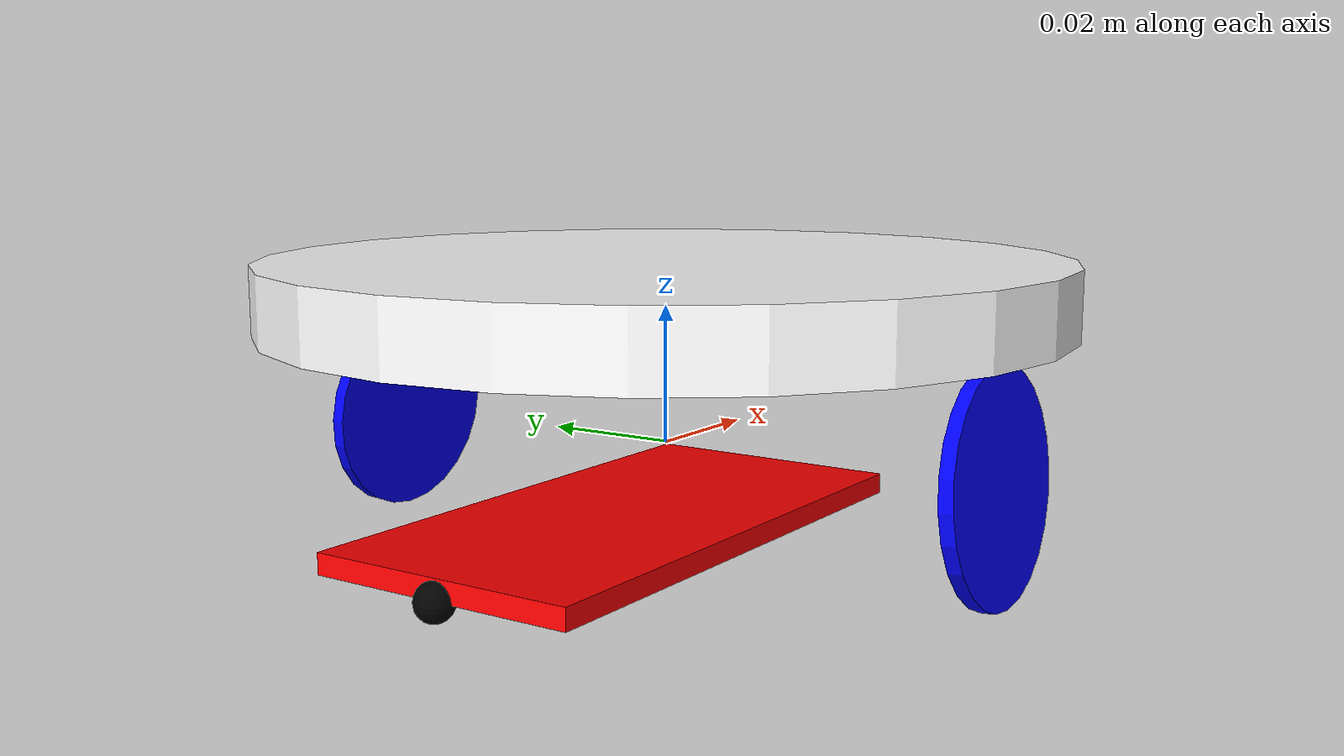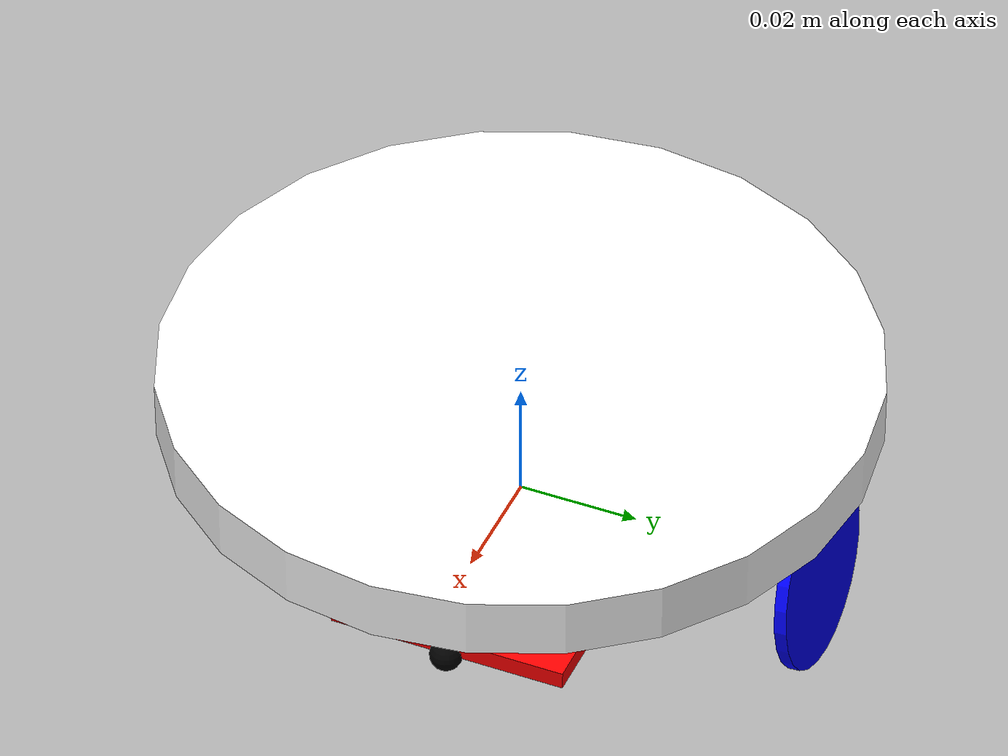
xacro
<?xml version="1.0"?>
<robot xmlns:xacro="http://www.ros.org/wiki/xacro" name="kabot_native_sim">
  <xacro:arg name="schema_path" default=""/>
  <xacro:arg name="zenoh_endpoint" default="tcp/127.0.0.1:7447"/>
  <xacro:include filename="kabot.urdf.xacro"/>
  <ros2_control name="KabotNativeSim" type="system">
    <hardware>
      <plugin>zenbedded_hardware_interface/ZenbeddedHardware</plugin>
      <param name="schema_path">$(arg schema_path)</param>
      <param name="zenoh_mode">client</param>
      <param name="zenoh_endpoint">$(arg zenoh_endpoint)</param>
      <param name="state_topic">zenbedded/state</param>
      <param name="command_topic">zenbedded/cmd</param>
    </hardware>
    <sensor name="kabot">
      <state_interface name="heartbeat"/>
    </sensor>
    <joint name="left_wheel_joint">
      <command_interface name="effort">
        <param name="min">-1</param>
        <param name="max">1</param>
      </command_interface>
      <state_interface name="position"/>
      <state_interface name="velocity"/>
    </joint>
    <joint name="right_wheel_joint">
      <command_interface name="effort">
        <param name="min">-1</param>
        <param name="max">1</param>
      </command_interface>
      <state_interface name="position"/>
      <state_interface name="velocity"/>
    </joint>
  </ros2_control>
</robot>

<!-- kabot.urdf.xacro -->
<robot xmlns:xacro="http://www.ros.org/wiki/xacro" name="Kabot">
  <xacro:arg name="prefix" default=""/>

  <xacro:include filename="kabot.materials.xacro"/>
  <xacro:include filename="kabot_description.urdf.xacro"/>

  <xacro:kabot prefix="$(arg prefix)"/>
</robot>

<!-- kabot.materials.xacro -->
<robot xmlns:xacro="http://www.ros.org/wiki/xacro">
  <material name="white">
    <color rgba="1 1 1 1"/>
  </material>
  <material name="blue">
    <color rgba="0 0 1 1"/>
  </material>
  <material name="red">
    <color rgba="1 0 0 1"/>
  </material>
  <material name="black">
    <color rgba="0 0 0 1"/>
  </material>
</robot>

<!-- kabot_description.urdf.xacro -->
<robot xmlns:xacro="http://www.ros.org/wiki/xacro">
  <xacro:include filename="../gazebo/kabot_physics.xacro"/>
  <xacro:macro name="kabot" params="prefix physics:=false">
    <xacro:property name="chassis_length" value="0.08"/>
    <xacro:property name="chassis_width" value="0.04"/>
    <xacro:property name="chassis_height" value="0.003"/>
    <xacro:property name="slider_radius" value="0.0027"/>
    <xacro:property name="top_height" value="0.01"/>
    <xacro:property name="top_radius" value="0.058"/>
    <xacro:property name="wheel_width" value="0.002"/>
    <xacro:property name="wheel_radius" value="0.016"/>
    <xacro:property name="wheel_half_separation" value="0.051"/>
    <xacro:property name="wheel_roll" value="1.5"/>

    <link name="${prefix}base_link"/>

    <link name="${prefix}chassis">
      <xacro:if value="${physics}">
        <xacro:kabot_box_physics mass="0.150" length="${chassis_length}"
          width="${chassis_width}" height="${chassis_height}"/>
      </xacro:if>
      <visual>
        <geometry>
          <box size="${chassis_length} ${chassis_width} ${chassis_height}"/>
        </geometry>
        <material name="red"/>
      </visual>
    </link>

    <link name="${prefix}back_slider">
      <xacro:if value="${physics}">
        <xacro:kabot_sphere_physics mass="0.005" radius="${slider_radius}"/>
      </xacro:if>
      <visual>
        <geometry>
          <sphere radius="${slider_radius}"/>
        </geometry>
        <material name="black"/>
      </visual>
    </link>

    <link name="${prefix}front_slider">
      <xacro:if value="${physics}">
        <xacro:kabot_sphere_physics mass="0.005" radius="${slider_radius}"/>
      </xacro:if>
      <visual>
        <geometry>
          <sphere radius="${slider_radius}"/>
        </geometry>
        <material name="black"/>
      </visual>
    </link>

    <link name="${prefix}top">
      <xacro:if value="${physics}">
        <xacro:kabot_cylinder_physics mass="0.020" radius="${top_radius}" length="${top_height}"/>
      </xacro:if>
      <visual>
        <geometry>
          <cylinder length="${top_height}" radius="${top_radius}"/>
        </geometry>
        <material name="white"/>
      </visual>
    </link>

    <link name="${prefix}left_wheel">
      <xacro:if value="${physics}">
        <xacro:kabot_cylinder_physics mass="0.010" radius="${wheel_radius}" length="${wheel_width}"/>
      </xacro:if>
      <visual>
        <geometry>
          <cylinder length="${wheel_width}" radius="${wheel_radius}"/>
        </geometry>
        <material name="blue"/>
      </visual>
    </link>

    <link name="${prefix}right_wheel">
      <xacro:if value="${physics}">
        <xacro:kabot_cylinder_physics mass="0.010" radius="${wheel_radius}" length="${wheel_width}"/>
      </xacro:if>
      <visual>
        <geometry>
          <cylinder length="${wheel_width}" radius="${wheel_radius}"/>
        </geometry>
        <material name="blue"/>
      </visual>
    </link>

    <joint name="${prefix}chassis_joint" type="fixed">
      <parent link="${prefix}base_link"/>
      <child link="${prefix}chassis"/>
      <origin xyz="-0.01 0.0 -0.0095"/>
    </joint>

    <joint name="${prefix}front_slider_joint" type="fixed">
      <parent link="${prefix}base_link"/>
      <child link="${prefix}front_slider"/>
      <origin xyz="0.03 0.0 -0.011"/>
    </joint>

    <joint name="${prefix}back_slider_joint" type="fixed">
      <parent link="${prefix}base_link"/>
      <child link="${prefix}back_slider"/>
      <origin xyz="-0.05 0.0 -0.011"/>
    </joint>

    <joint name="${prefix}top_joint" type="fixed">
      <parent link="${prefix}base_link"/>
      <child link="${prefix}top"/>
      <origin xyz="0.0 0.0 0.022"/>
    </joint>

    <joint name="${prefix}left_wheel_joint" type="continuous">
      <parent link="${prefix}base_link"/>
      <child link="${prefix}left_wheel"/>
      <origin xyz="0.0 ${wheel_half_separation} 0.0" rpy="${-wheel_roll} 0 0"/>
      <axis xyz="0 0 1"/>
    </joint>

    <joint name="${prefix}right_wheel_joint" type="continuous">
      <parent link="${prefix}base_link"/>
      <child link="${prefix}right_wheel"/>
      <origin xyz="0.0 ${-wheel_half_separation} 0.0" rpy="${wheel_roll} 0 0"/>
      <axis xyz="0 0 -1"/>
    </joint>
  </xacro:macro>
</robot>
